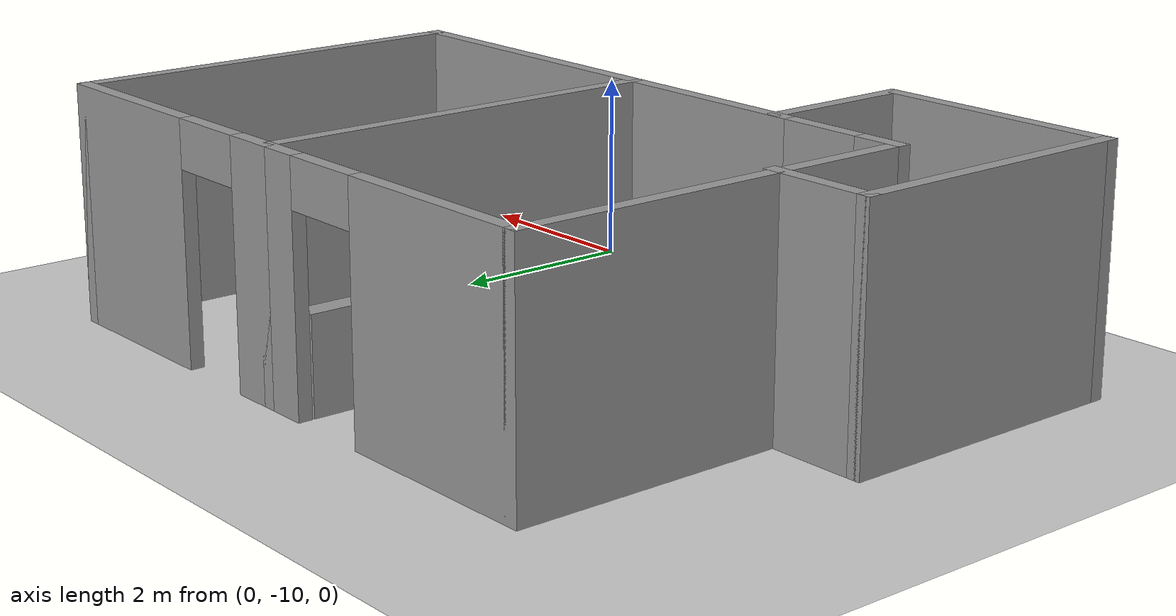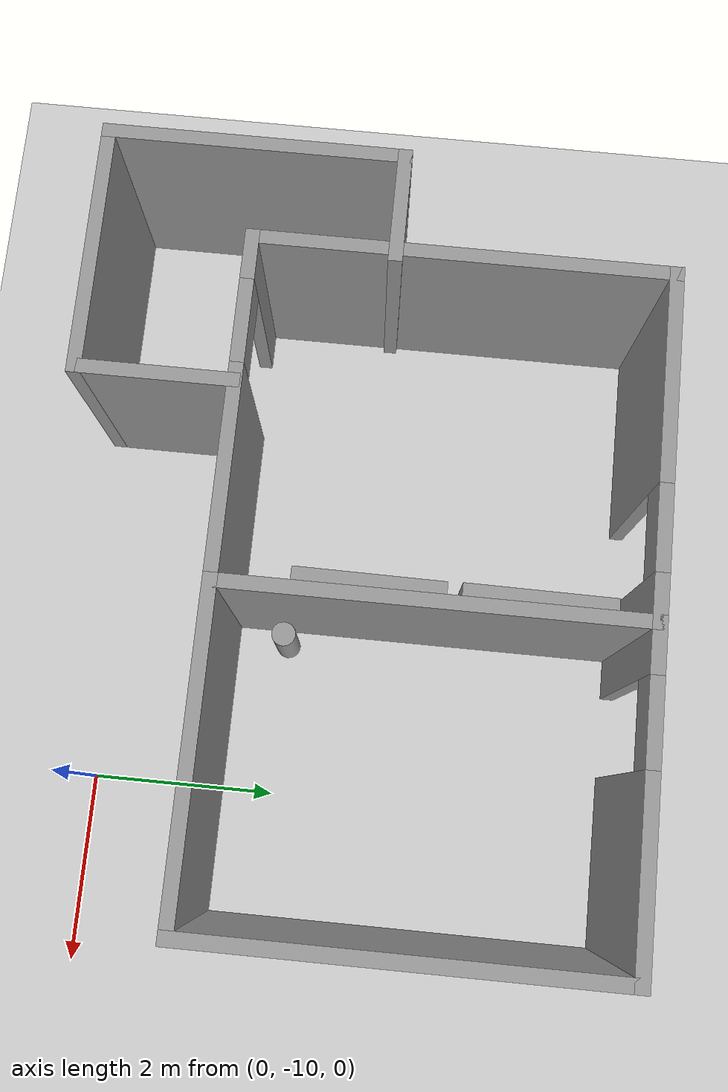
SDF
<sdf version="1.9">
 <world name="default">
  <model name="ground_plane">
   <static>true</static>
   <link name="link">
    <collision name="collision">
     <geometry><plane><normal>0 0 1</normal><size>100 100</size></plane></geometry>
     <surface><friction><ode><mu>100</mu><mu2>50</mu2></ode></friction></surface>
    </collision>
    <visual name="visual">
     <cast_shadows>false</cast_shadows>
     <geometry><plane><normal>0 0 1</normal><size>100 100</size></plane></geometry>
     <material>
      <script><uri>file://media/materials/scripts/gazebo.material</uri><name>Gazebo/Grey</name></script>
     </material>
    </visual>
   </link>
  </model>
  <model name="cma_quartos">
   <pose>-2.58169 -7.2645600000000004 0 0 0 0</pose>
   <link name="Wall_0">
    <collision name="Wall_0_Collision">
     <geometry><box><size>4.5 0.14999999999999999 2.5</size></box></geometry>
     <pose>0 0 1.25 0 0 0</pose>
    </collision>
    <visual name="Wall_0_Visual">
     <pose>0 0 1.25 0 0 0</pose>
     <geometry><box><size>4.5 0.14999999999999999 2.5</size></box></geometry>
     <material>
      <script><uri>file://media/materials/scripts/gazebo.material</uri><name>Gazebo/Grey</name></script>
      <ambient>1 1 1 1</ambient>
     </material>
    </visual>
    <pose>0.64500000000000002 0.81000000000000005 0 0 0 -1.5708</pose>
   </link>
   <link name="Wall_1">
    <pose>-1.155 -1.365 0 0 0 3.1415899999999999</pose>
    <visual name="Wall_1_Visual_0">
     <pose>-0.72250000000000003 0 1.25 0 0 0</pose>
     <geometry><box><size>2.3050000000000002 0.14999999999999999 2.5</size></box></geometry>
     <material>
      <script><uri>file://media/materials/scripts/gazebo.material</uri><name>Gazebo/Grey</name></script>
      <ambient>1 1 1 1</ambient>
     </material>
    </visual>
    <collision name="Wall_1_Collision_0">
     <geometry><box><size>2.3050000000000002 0.14999999999999999 2.5</size></box></geometry>
     <pose>-0.72250000000000003 0 1.25 0 0 0</pose>
    </collision>
    <visual name="Wall_1_Visual_1">
     <pose>1.6025 0 1.25 0 0 0</pose>
     <geometry><box><size>0.54500000000000004 0.14999999999999999 2.5</size></box></geometry>
     <material>
      <script><uri>file://media/materials/scripts/gazebo.material</uri><name>Gazebo/Grey</name></script>
      <ambient>1 1 1 1</ambient>
     </material>
    </visual>
    <collision name="Wall_1_Collision_1">
     <geometry><box><size>0.54500000000000004 0.14999999999999999 2.5</size></box></geometry>
     <pose>1.6025 0 1.25 0 0 0</pose>
    </collision>
    <visual name="Wall_1_Visual_2">
     <pose>0.88 0 2.25 0 0 0</pose>
     <geometry><box><size>0.90000000000000002 0.14999999999999999 0.5</size></box></geometry>
     <material>
      <script><uri>file://media/materials/scripts/gazebo.material</uri><name>Gazebo/Grey</name></script>
      <ambient>1 1 1 1</ambient>
     </material>
    </visual>
    <collision name="Wall_1_Collision_2">
     <geometry><box><size>0.90000000000000002 0.14999999999999999 0.5</size></box></geometry>
     <pose>0.88 0 2.25 0 0 0</pose>
    </collision>
   </link>
   <link name="Wall_10">
    <collision name="Wall_10_Collision">
     <geometry><box><size>1.75 0.14999999999999999 2.5</size></box></geometry>
     <pose>0 0 1.25 0 0 0</pose>
    </collision>
    <visual name="Wall_10_Visual">
     <pose>0 0 1.25 0 0 0</pose>
     <geometry><box><size>1.75 0.14999999999999999 2.5</size></box></geometry>
     <material>
      <script><uri>file://media/materials/scripts/gazebo.material</uri><name>Gazebo/Grey</name></script>
      <ambient>1 1 1 1</ambient>
     </material>
    </visual>
    <pose>-1.395 -2.1850000000000001 0 0 0 -1.5708</pose>
   </link>
   <link name="Wall_11">
    <collision name="Wall_11_Collision">
     <geometry><box><size>2.75 0.14999999999999999 2.5</size></box></geometry>
     <pose>0 0 1.25 0 0 0</pose>
    </collision>
    <visual name="Wall_11_Visual">
     <pose>0 0 1.25 0 0 0</pose>
     <geometry><box><size>2.75 0.14999999999999999 2.5</size></box></geometry>
     <material>
      <script><uri>file://media/materials/scripts/gazebo.material</uri><name>Gazebo/Grey</name></script>
      <ambient>1 1 1 1</ambient>
     </material>
    </visual>
    <pose>-2.6949999999999998 -2.9849999999999999 0 0 0 3.1415899999999999</pose>
   </link>
   <link name="Wall_12">
    <collision name="Wall_12_Collision">
     <geometry><box><size>3.25 0.14999999999999999 2.5</size></box></geometry>
     <pose>0 0 1.25 0 0 0</pose>
    </collision>
    <visual name="Wall_12_Visual">
     <pose>0 0 1.25 0 0 0</pose>
     <geometry><box><size>3.25 0.14999999999999999 2.5</size></box></geometry>
     <material>
      <script><uri>file://media/materials/scripts/gazebo.material</uri><name>Gazebo/Grey</name></script>
      <ambient>1 1 1 1</ambient>
     </material>
    </visual>
    <pose>-3.9950000000000001 -1.4350000000000001 0 0 0 1.5708</pose>
   </link>
   <link name="Wall_13">
    <collision name="Wall_13_Collision">
     <geometry><box><size>1.25 0.14999999999999999 2.5</size></box></geometry>
     <pose>0 0 1.25 0 0 0</pose>
    </collision>
    <visual name="Wall_13_Visual">
     <pose>0 0 1.25 0 0 0</pose>
     <geometry><box><size>1.25 0.14999999999999999 2.5</size></box></geometry>
     <material>
      <script><uri>file://media/materials/scripts/gazebo.material</uri><name>Gazebo/Grey</name></script>
      <ambient>1 1 1 1</ambient>
     </material>
    </visual>
    <pose>-3.4449999999999998 0.115 0 0 0 0</pose>
   </link>
   <link name="Wall_2">
    <collision name="Wall_2_Collision">
     <geometry><box><size>4.5 0.14999999999999999 2.5</size></box></geometry>
     <pose>0 0 1.25 0 0 0</pose>
    </collision>
    <visual name="Wall_2_Visual">
     <pose>0 0 1.25 0 0 0</pose>
     <geometry><box><size>4.5 0.14999999999999999 2.5</size></box></geometry>
     <material>
      <script><uri>file://media/materials/scripts/gazebo.material</uri><name>Gazebo/Grey</name></script>
      <ambient>1 1 1 1</ambient>
     </material>
    </visual>
    <pose>-2.9550000000000001 0.81000000000000005 0 0 0 1.5708</pose>
   </link>
   <link name="Wall_3">
    <pose>-1.155 2.9849999999999999 0 0 0 0</pose>
    <visual name="Wall_3_Visual_0">
     <pose>-0.73250000000000004 0 1.25 0 0 0</pose>
     <geometry><box><size>2.2850000000000001 0.14999999999999999 2.5</size></box></geometry>
     <material>
      <script><uri>file://media/materials/scripts/gazebo.material</uri><name>Gazebo/Grey</name></script>
      <ambient>1 1 1 1</ambient>
     </material>
    </visual>
    <collision name="Wall_3_Collision_0">
     <geometry><box><size>2.2850000000000001 0.14999999999999999 2.5</size></box></geometry>
     <pose>-0.73250000000000004 0 1.25 0 0 0</pose>
    </collision>
    <visual name="Wall_3_Visual_1">
     <pose>1.5925 0 1.25 0 0 0</pose>
     <geometry><box><size>0.56499999999999995 0.14999999999999999 2.5</size></box></geometry>
     <material>
      <script><uri>file://media/materials/scripts/gazebo.material</uri><name>Gazebo/Grey</name></script>
      <ambient>1 1 1 1</ambient>
     </material>
    </visual>
    <collision name="Wall_3_Collision_1">
     <geometry><box><size>0.56499999999999995 0.14999999999999999 2.5</size></box></geometry>
     <pose>1.5925 0 1.25 0 0 0</pose>
    </collision>
    <visual name="Wall_3_Visual_2">
     <pose>0.85999999999999999 0 2.25 0 0 0</pose>
     <geometry><box><size>0.90000000000000002 0.14999999999999999 0.5</size></box></geometry>
     <material>
      <script><uri>file://media/materials/scripts/gazebo.material</uri><name>Gazebo/Grey</name></script>
      <ambient>1 1 1 1</ambient>
     </material>
    </visual>
    <collision name="Wall_3_Collision_2">
     <geometry><box><size>0.90000000000000002 0.14999999999999999 0.5</size></box></geometry>
     <pose>0.85999999999999999 0 2.25 0 0 0</pose>
    </collision>
   </link>
   <link name="Wall_6">
    <pose>2.3199999999999998 2.9849999999999999 0 0 0 0</pose>
    <visual name="Wall_6_Visual_0">
     <pose>-1.4575 0 1.25 0 0 0</pose>
     <geometry><box><size>0.58499999999999996 0.14999999999999999 2.5</size></box></geometry>
     <material>
      <script><uri>file://media/materials/scripts/gazebo.material</uri><name>Gazebo/Grey</name></script>
      <ambient>1 1 1 1</ambient>
     </material>
    </visual>
    <collision name="Wall_6_Collision_0">
     <geometry><box><size>0.58499999999999996 0.14999999999999999 2.5</size></box></geometry>
     <pose>-1.4575 0 1.25 0 0 0</pose>
    </collision>
    <visual name="Wall_6_Visual_1">
     <pose>0.74250000000000005 0 1.25 0 0 0</pose>
     <geometry><box><size>2.0150000000000001 0.14999999999999999 2.5</size></box></geometry>
     <material>
      <script><uri>file://media/materials/scripts/gazebo.material</uri><name>Gazebo/Grey</name></script>
      <ambient>1 1 1 1</ambient>
     </material>
    </visual>
    <collision name="Wall_6_Collision_1">
     <geometry><box><size>2.0150000000000001 0.14999999999999999 2.5</size></box></geometry>
     <pose>0.74250000000000005 0 1.25 0 0 0</pose>
    </collision>
    <visual name="Wall_6_Visual_2">
     <pose>-0.71499999999999997 0 2.25 0 0 0</pose>
     <geometry><box><size>0.90000000000000002 0.14999999999999999 0.5</size></box></geometry>
     <material>
      <script><uri>file://media/materials/scripts/gazebo.material</uri><name>Gazebo/Grey</name></script>
      <ambient>1 1 1 1</ambient>
     </material>
    </visual>
    <collision name="Wall_6_Collision_2">
     <geometry><box><size>0.90000000000000002 0.14999999999999999 0.5</size></box></geometry>
     <pose>-0.71499999999999997 0 2.25 0 0 0</pose>
    </collision>
   </link>
   <link name="Wall_7">
    <collision name="Wall_7_Collision">
     <geometry><box><size>4.5 0.14999999999999999 2.5</size></box></geometry>
     <pose>0 0 1.25 0 0 0</pose>
    </collision>
    <visual name="Wall_7_Visual">
     <pose>0 0 1.25 0 0 0</pose>
     <geometry><box><size>4.5 0.14999999999999999 2.5</size></box></geometry>
     <material>
      <script><uri>file://media/materials/scripts/gazebo.material</uri><name>Gazebo/Grey</name></script>
      <ambient>1 1 1 1</ambient>
     </material>
    </visual>
    <pose>3.9950000000000001 0.81000000000000005 0 0 0 -1.5708</pose>
   </link>
   <link name="Wall_8">
    <collision name="Wall_8_Collision">
     <geometry><box><size>3.5 0.14999999999999999 2.5</size></box></geometry>
     <pose>0 0 1.25 0 0 0</pose>
    </collision>
    <visual name="Wall_8_Visual">
     <pose>0 0 1.25 0 0 0</pose>
     <geometry><box><size>3.5 0.14999999999999999 2.5</size></box></geometry>
     <material>
      <script><uri>file://media/materials/scripts/gazebo.material</uri><name>Gazebo/Grey</name></script>
      <ambient>1 1 1 1</ambient>
     </material>
    </visual>
    <pose>2.3199999999999998 -1.365 0 0 0 3.1415899999999999</pose>
   </link>
   <static>true</static>
  </model>
  <model name="cma_armario_2">
   <link name="link_0">
    <pose>1.3215699999999999 0.88517800000000002 0.5 0 0 0</pose>
    <inertial>
     <mass>0.40237600000000001</mass>
     <inertia>
      <ixx>0.0353686</ixx>
      <ixy>0</ixy>
      <ixz>0</ixz>
      <iyy>0.13261600000000001</iyy>
      <iyz>0</iyz>
      <izz>0.100922</izz>
     </inertia>
    </inertial>
    <visual name="visual">
     <geometry><box><size>1.7187699999999999 0.234069 1</size></box></geometry>
     <material>
      <lighting>true</lighting>
      <script><uri>file://media/materials/scripts/gazebo.material</uri><name>Gazebo/Grey</name></script>
      <ambient>0.300000012 0.300000012 0.300000012 1</ambient>
      <diffuse>0.699999988 0.699999988 0.699999988 1</diffuse>
      <specular>0.00999999978 0.00999999978 0.00999999978 1</specular>
      <emissive>0 0 0 1</emissive>
     </material>
    </visual>
    <collision name="collision">
     <geometry><box><size>1.7187699999999999 0.234069 1</size></box></geometry>
     <surface>
      <friction>
       <ode><mu>1</mu><mu2>1</mu2><fdir1>0 0 0</fdir1><slip1>0</slip1><slip2>0</slip2></ode>
       <torsional>
        <coefficient>1</coefficient>
        <patch_radius>0</patch_radius>
        <surface_radius>0</surface_radius>
        <use_patch_radius>true</use_patch_radius>
        <ode><slip>0</slip></ode>
       </torsional>
      </friction>
      <bounce><restitution_coefficient>0</restitution_coefficient><threshold>1000000</threshold></bounce>
      <contact>
       <collide_without_contact>false</collide_without_contact>
       <collide_without_contact_bitmask>1</collide_without_contact_bitmask>
       <collide_bitmask>1</collide_bitmask>
       <ode>
        <soft_cfm>0</soft_cfm>
        <soft_erp>0.20000000000000001</soft_erp>
        <kp>10000000000000</kp>
        <kd>1</kd>
        <max_vel>0.01</max_vel>
        <min_depth>0</min_depth>
       </ode>
       <bullet>
        <split_impulse>true</split_impulse>
        <split_impulse_penetration_threshold>-0.01</split_impulse_penetration_threshold>
        <soft_cfm>0</soft_cfm>
        <soft_erp>0.20000000000000001</soft_erp>
        <kp>10000000000000</kp>
        <kd>1</kd>
       </bullet>
      </contact>
     </surface>
    </collision>
   </link>
   <static>false</static>
   <pose>-1.4424399999999999 -6.5633400000000002 -1.9999999999999999e-06 1.9999999999999999e-06 0 1.56267</pose>
  </model>
  <model name="cma_armario_2_clone">
   <link name="link_0">
    <pose>1.3215699999999999 0.88517800000000002 0.5 0 0 0</pose>
    <inertial>
     <mass>0.40237600000000001</mass>
     <inertia>
      <ixx>0.0353686</ixx>
      <ixy>0</ixy>
      <ixz>0</ixz>
      <iyy>0.13261600000000001</iyy>
      <iyz>0</iyz>
      <izz>0.100922</izz>
     </inertia>
    </inertial>
    <visual name="visual">
     <geometry><box><size>1.7187699999999999 0.234069 1</size></box></geometry>
     <material>
      <lighting>true</lighting>
      <script><uri>file://media/materials/scripts/gazebo.material</uri><name>Gazebo/Grey</name></script>
      <ambient>0.300000012 0.300000012 0.300000012 1</ambient>
      <diffuse>0.699999988 0.699999988 0.699999988 1</diffuse>
      <specular>0.00999999978 0.00999999978 0.00999999978 1</specular>
      <emissive>0 0 0 1</emissive>
     </material>
    </visual>
    <collision name="collision">
     <geometry><box><size>1.7187699999999999 0.234069 1</size></box></geometry>
     <surface>
      <friction>
       <ode><mu>1</mu><mu2>1</mu2><fdir1>0 0 0</fdir1><slip1>0</slip1><slip2>0</slip2></ode>
       <torsional>
        <coefficient>1</coefficient>
        <patch_radius>0</patch_radius>
        <surface_radius>0</surface_radius>
        <use_patch_radius>true</use_patch_radius>
        <ode><slip>0</slip></ode>
       </torsional>
      </friction>
      <bounce><restitution_coefficient>0</restitution_coefficient><threshold>1000000</threshold></bounce>
      <contact>
       <collide_without_contact>false</collide_without_contact>
       <collide_without_contact_bitmask>1</collide_without_contact_bitmask>
       <collide_bitmask>1</collide_bitmask>
       <ode>
        <soft_cfm>0</soft_cfm>
        <soft_erp>0.20000000000000001</soft_erp>
        <kp>10000000000000</kp>
        <kd>1</kd>
        <max_vel>0.01</max_vel>
        <min_depth>0</min_depth>
       </ode>
       <bullet>
        <split_impulse>true</split_impulse>
        <split_impulse_penetration_threshold>-0.01</split_impulse_penetration_threshold>
        <soft_cfm>0</soft_cfm>
        <soft_erp>0.20000000000000001</soft_erp>
        <kp>10000000000000</kp>
        <kd>1</kd>
       </bullet>
      </contact>
     </surface>
    </collision>
   </link>
   <static>false</static>
   <pose>-1.4489799999999999 -8.4462499999999991 -1.9999999999999999e-06 1.9999999999999999e-06 0 1.56267</pose>
  </model>
  <model name="cma_lixo_1">
   <link name="link_1">
    <pose>0.88296200000000002 1.81586 0.5 0 0 0</pose>
    <inertial>
     <mass>0.068764400000000003</mass>
     <inertia>
      <ixx>0.00602588</ixx>
      <ixy>0</ixy>
      <ixz>0</ixz>
      <iyy>0.00602588</iyy>
      <iyz>0</iyz>
      <izz>0.00059106800000000004</izz>
     </inertia>
    </inertial>
    <visual name="visual">
     <geometry><cylinder><radius>0.13111200000000001</radius><length>1</length></cylinder></geometry>
     <material>
      <lighting>true</lighting>
      <script><uri>file://media/materials/scripts/gazebo.material</uri><name>Gazebo/Grey</name></script>
      <ambient>0.300000012 0.300000012 0.300000012 1</ambient>
      <diffuse>0.699999988 0.699999988 0.699999988 1</diffuse>
      <specular>0.00999999978 0.00999999978 0.00999999978 1</specular>
      <emissive>0 0 0 1</emissive>
     </material>
    </visual>
    <collision name="collision">
     <geometry><cylinder><radius>0.13111200000000001</radius><length>1</length></cylinder></geometry>
     <surface>
      <friction>
       <ode><mu>1</mu><mu2>1</mu2><fdir1>0 0 0</fdir1><slip1>0</slip1><slip2>0</slip2></ode>
       <torsional>
        <coefficient>1</coefficient>
        <patch_radius>0</patch_radius>
        <surface_radius>0</surface_radius>
        <use_patch_radius>true</use_patch_radius>
        <ode><slip>0</slip></ode>
       </torsional>
      </friction>
      <bounce><restitution_coefficient>0</restitution_coefficient><threshold>1000000</threshold></bounce>
      <contact>
       <collide_without_contact>false</collide_without_contact>
       <collide_without_contact_bitmask>1</collide_without_contact_bitmask>
       <collide_bitmask>1</collide_bitmask>
       <ode>
        <soft_cfm>0</soft_cfm>
        <soft_erp>0.20000000000000001</soft_erp>
        <kp>10000000000000</kp>
        <kd>1</kd>
        <max_vel>0.01</max_vel>
        <min_depth>0</min_depth>
       </ode>
       <bullet>
        <split_impulse>true</split_impulse>
        <split_impulse_penetration_threshold>-0.01</split_impulse_penetration_threshold>
        <soft_cfm>0</soft_cfm>
        <soft_erp>0.20000000000000001</soft_erp>
        <kp>10000000000000</kp>
        <kd>1</kd>
       </bullet>
      </contact>
     </surface>
    </collision>
   </link>
   <static>false</static>
   <pose>-2.5710299999999999 -9.7974999999999994 -9.9999999999999995e-07 0 0 0</pose>
  </model>
 </world>
</sdf>
